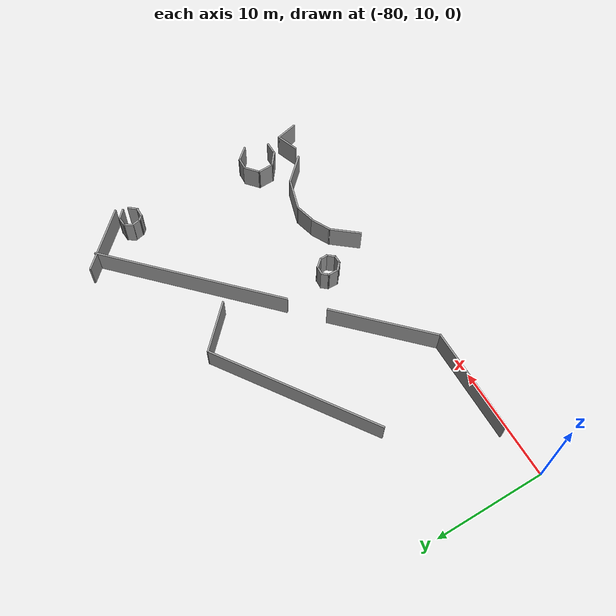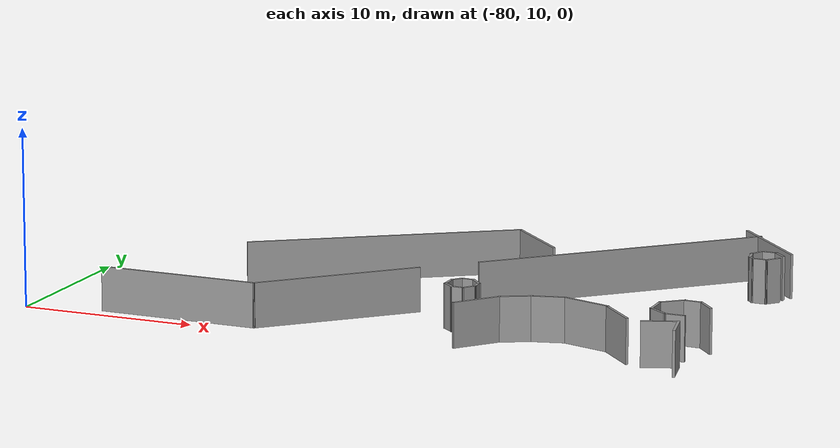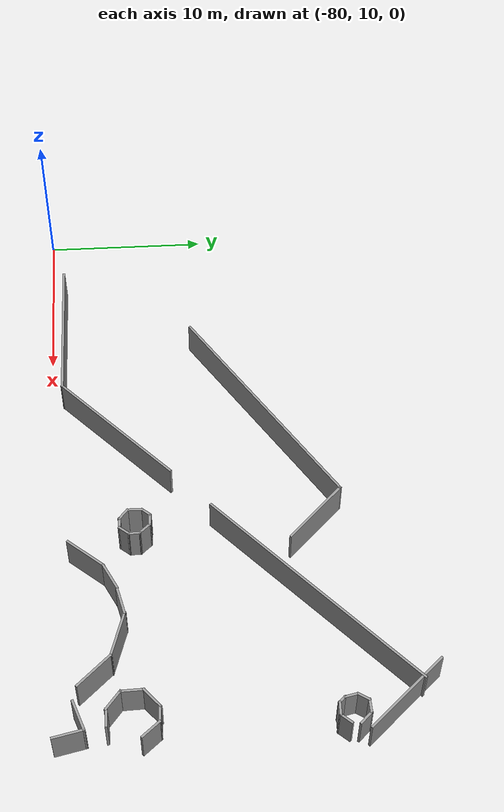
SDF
<sdf version="1.6">
 <model name="mall_new_reduce_size">
  <pose>-6.80917 7.5529 0 0 -0 0</pose>
  <link name="Wall_0">
   <collision name="Wall_0_Collision">
    <geometry><box><size>9.25048 0.15 2.5</size></box></geometry>
    <pose>0 0 1.25 0 -0 0</pose>
   </collision>
   <visual name="Wall_0_Visual">
    <pose>0 0 1.25 0 -0 0</pose>
    <geometry><box><size>9.25048 0.15 2.5</size></box></geometry>
    <material>
     <script><uri>file://media/materials/scripts/gazebo.material</uri><name>Gazebo/Grey</name></script>
     <ambient>1 1 1 1</ambient>
    </material>
    <meta><layer>0</layer></meta>
   </visual>
   <pose>-64.3372 3.2996 0 0 -0 -0.010225</pose>
  </link>
  <link name="Wall_10">
   <collision name="Wall_10_Collision">
    <geometry><box><size>15.64 0.15 2.5</size></box></geometry>
    <pose>0 0 1.25 0 -0 0</pose>
   </collision>
   <visual name="Wall_10_Visual">
    <pose>0 0 1.25 0 -0 0</pose>
    <geometry><box><size>15.64 0.15 2.5</size></box></geometry>
    <material>
     <script><uri>file://media/materials/scripts/gazebo.material</uri><name>Gazebo/Grey</name></script>
     <ambient>1 1 1 1</ambient>
    </material>
    <meta><layer>0</layer></meta>
   </visual>
   <pose>-57.6357 15.9234 0 0 -0 0.595213</pose>
  </link>
  <link name="Wall_106">
   <collision name="Wall_106_Collision">
    <geometry><box><size>0.88293 0.15 2.5</size></box></geometry>
    <pose>0 0 1.25 0 -0 0</pose>
   </collision>
   <visual name="Wall_106_Visual">
    <pose>0 0 1.25 0 -0 0</pose>
    <geometry><box><size>0.88293 0.15 2.5</size></box></geometry>
    <material>
     <script><uri>file://media/materials/scripts/gazebo.material</uri><name>Gazebo/Grey</name></script>
     <ambient>1 1 1 1</ambient>
    </material>
    <meta><layer>0</layer></meta>
   </visual>
   <pose>-37.2247 20.3731 0 0 -0 1.00343</pose>
  </link>
  <link name="Wall_107">
   <collision name="Wall_107_Collision">
    <geometry><box><size>0.940533 0.15 2.5</size></box></geometry>
    <pose>0 0 1.25 0 -0 0</pose>
   </collision>
   <visual name="Wall_107_Visual">
    <pose>0 0 1.25 0 -0 0</pose>
    <geometry><box><size>0.940533 0.15 2.5</size></box></geometry>
    <material>
     <script><uri>file://media/materials/scripts/gazebo.material</uri><name>Gazebo/Grey</name></script>
     <ambient>1 1 1 1</ambient>
    </material>
    <meta><layer>0</layer></meta>
   </visual>
   <pose>-36.633 20.7072 0 0 -0 0.04939</pose>
  </link>
  <link name="Wall_108">
   <collision name="Wall_108_Collision">
    <geometry><box><size>1.04338 0.15 2.5</size></box></geometry>
    <pose>0 0 1.25 0 -0 0</pose>
   </collision>
   <visual name="Wall_108_Visual">
    <pose>0 0 1.25 0 -0 0</pose>
    <geometry><box><size>1.04338 0.15 2.5</size></box></geometry>
    <material>
     <script><uri>file://media/materials/scripts/gazebo.material</uri><name>Gazebo/Grey</name></script>
     <ambient>1 1 1 1</ambient>
    </material>
    <meta><layer>0</layer></meta>
   </visual>
   <pose>-35.9265 20.4122 0 0 -0 -0.780985</pose>
  </link>
  <link name="Wall_11">
   <collision name="Wall_11_Collision">
    <geometry><box><size>4.74566 0.15 2.5</size></box></geometry>
    <pose>0 0 1.25 0 -0 0</pose>
   </collision>
   <visual name="Wall_11_Visual">
    <pose>0 0 1.25 0 -0 0</pose>
    <geometry><box><size>4.74566 0.15 2.5</size></box></geometry>
    <material>
     <script><uri>file://media/materials/scripts/gazebo.material</uri><name>Gazebo/Grey</name></script>
     <ambient>1 1 1 1</ambient>
    </material>
    <meta><layer>0</layer></meta>
   </visual>
   <pose>-49.5878 18.6511 0 0 -0 -0.779209</pose>
  </link>
  <link name="Wall_110">
   <collision name="Wall_110_Collision">
    <geometry><box><size>0.945582 0.15 2.5</size></box></geometry>
    <pose>0 0 1.25 0 -0 0</pose>
   </collision>
   <visual name="Wall_110_Visual">
    <pose>0 0 1.25 0 -0 0</pose>
    <geometry><box><size>0.945582 0.15 2.5</size></box></geometry>
    <material>
     <script><uri>file://media/materials/scripts/gazebo.material</uri><name>Gazebo/Grey</name></script>
     <ambient>1 1 1 1</ambient>
    </material>
    <meta><layer>0</layer></meta>
   </visual>
   <pose>-35.9305 19.2738 0 0 -0 -2.28278</pose>
  </link>
  <link name="Wall_111">
   <collision name="Wall_111_Collision">
    <geometry><box><size>0.906136 0.15 2.5</size></box></geometry>
    <pose>0 0 1.25 0 -0 0</pose>
   </collision>
   <visual name="Wall_111_Visual">
    <pose>0 0 1.25 0 -0 0</pose>
    <geometry><box><size>0.906136 0.15 2.5</size></box></geometry>
    <material>
     <script><uri>file://media/materials/scripts/gazebo.material</uri><name>Gazebo/Grey</name></script>
     <ambient>1 1 1 1</ambient>
    </material>
    <meta><layer>0</layer></meta>
   </visual>
   <pose>-36.5684 18.981 0 0 -0 3.13422</pose>
  </link>
  <link name="Wall_112">
   <collision name="Wall_112_Collision">
    <geometry><box><size>0.599997 0.15 2.5</size></box></geometry>
    <pose>0 0 1.25 0 -0 0</pose>
   </collision>
   <visual name="Wall_112_Visual">
    <pose>0 0 1.25 0 -0 0</pose>
    <geometry><box><size>0.599997 0.15 2.5</size></box></geometry>
    <material>
     <script><uri>file://media/materials/scripts/gazebo.material</uri><name>Gazebo/Grey</name></script>
     <ambient>1 1 1 1</ambient>
    </material>
    <meta><layer>0</layer></meta>
   </visual>
   <pose>-37.1032 19.1505 0 0 -0 2.30701</pose>
  </link>
  <link name="Wall_116">
   <collision name="Wall_116_Collision">
    <geometry><box><size>0.795039 0.15 2.5</size></box></geometry>
    <pose>0 0 1.25 0 -0 0</pose>
   </collision>
   <visual name="Wall_116_Visual">
    <pose>0 0 1.25 0 -0 0</pose>
    <geometry><box><size>0.795039 0.15 2.5</size></box></geometry>
    <material>
     <script><uri>file://media/materials/scripts/gazebo.material</uri><name>Gazebo/Grey</name></script>
     <ambient>1 1 1 1</ambient>
    </material>
    <meta><layer>0</layer></meta>
   </visual>
   <pose>-37.3234 19.6378 0 0 -0 1.78689</pose>
  </link>
  <link name="Wall_15">
   <collision name="Wall_15_Collision">
    <geometry><box><size>17.0313 0.15 2.5</size></box></geometry>
    <pose>0 0 1.25 0 -0 0</pose>
   </collision>
   <visual name="Wall_15_Visual">
    <pose>0 0 1.25 0 -0 0</pose>
    <geometry><box><size>17.0313 0.15 2.5</size></box></geometry>
    <material>
     <script><uri>file://media/materials/scripts/gazebo.material</uri><name>Gazebo/Grey</name></script>
     <ambient>1 1 1 1</ambient>
    </material>
    <meta><layer>0</layer></meta>
   </visual>
   <pose>-44.3443 18.1837 0 0 -0 0.766862</pose>
  </link>
  <link name="Wall_17">
   <collision name="Wall_17_Collision">
    <geometry><box><size>6.11812 0.15 2.5</size></box></geometry>
    <pose>0 0 1.25 0 -0 0</pose>
   </collision>
   <visual name="Wall_17_Visual">
    <pose>0 0 1.25 0 -0 0</pose>
    <geometry><box><size>6.11812 0.15 2.5</size></box></geometry>
    <material>
     <script><uri>file://media/materials/scripts/gazebo.material</uri><name>Gazebo/Grey</name></script>
     <ambient>1 1 1 1</ambient>
    </material>
    <meta><layer>0</layer></meta>
   </visual>
   <pose>-37.3721 22.8899 0 0 -0 -0.823537</pose>
  </link>
  <link name="Wall_2">
   <collision name="Wall_2_Collision">
    <geometry><box><size>9.63799 0.15 2.5</size></box></geometry>
    <pose>0 0 1.25 0 -0 0</pose>
   </collision>
   <visual name="Wall_2_Visual">
    <pose>0 0 1.25 0 -0 0</pose>
    <geometry><box><size>9.63799 0.15 2.5</size></box></geometry>
    <material>
     <script><uri>file://media/materials/scripts/gazebo.material</uri><name>Gazebo/Grey</name></script>
     <ambient>1 1 1 1</ambient>
    </material>
    <meta><layer>0</layer></meta>
   </visual>
   <pose>-56.4049 6.57954 0 0 -0 -2.36452</pose>
  </link>
  <link name="Wall_354">
   <collision name="Wall_354_Collision">
    <geometry><box><size>2.05857 0.15 2.5</size></box></geometry>
    <pose>0 0 1.25 0 -0 0</pose>
   </collision>
   <visual name="Wall_354_Visual">
    <pose>0 0 1.25 0 -0 0</pose>
    <geometry><box><size>2.05857 0.15 2.5</size></box></geometry>
    <material>
     <script><uri>file://media/materials/scripts/gazebo.material</uri><name>Gazebo/Grey</name></script>
     <ambient>1 1 1 1</ambient>
    </material>
    <meta><layer>0</layer></meta>
   </visual>
   <pose>-36.9144 4.20159 0 0 -0 0.346103</pose>
  </link>
  <link name="Wall_355">
   <collision name="Wall_355_Collision">
    <geometry><box><size>1.98834 0.15 2.5</size></box></geometry>
    <pose>0 0 1.25 0 -0 0</pose>
   </collision>
   <visual name="Wall_355_Visual">
    <pose>0 0 1.25 0 -0 0</pose>
    <geometry><box><size>1.98834 0.15 2.5</size></box></geometry>
    <material>
     <script><uri>file://media/materials/scripts/gazebo.material</uri><name>Gazebo/Grey</name></script>
     <ambient>1 1 1 1</ambient>
    </material>
    <meta><layer>0</layer></meta>
   </visual>
   <pose>-35.8124 3.62071 0 0 -0 -1.34665</pose>
  </link>
  <link name="Wall_370">
   <collision name="Wall_370_Collision">
    <geometry><box><size>2.80655 0.15 2.5</size></box></geometry>
    <pose>0 0 1.25 0 -0 0</pose>
   </collision>
   <visual name="Wall_370_Visual">
    <pose>0 0 1.25 0 -0 0</pose>
    <geometry><box><size>2.80655 0.15 2.5</size></box></geometry>
    <material>
     <script><uri>file://media/materials/scripts/gazebo.material</uri><name>Gazebo/Grey</name></script>
     <ambient>1 1 1 1</ambient>
    </material>
    <meta><layer>0</layer></meta>
   </visual>
   <pose>-39.6621 5.10061 0 0 -0 2.32612</pose>
  </link>
  <link name="Wall_372">
   <collision name="Wall_372_Collision">
    <geometry><box><size>3.01709 0.15 2.5</size></box></geometry>
    <pose>0 0 1.25 0 -0 0</pose>
   </collision>
   <visual name="Wall_372_Visual">
    <pose>0 0 1.25 0 -0 0</pose>
    <geometry><box><size>3.01709 0.15 2.5</size></box></geometry>
    <material>
     <script><uri>file://media/materials/scripts/gazebo.material</uri><name>Gazebo/Grey</name></script>
     <ambient>1 1 1 1</ambient>
    </material>
    <meta><layer>0</layer></meta>
   </visual>
   <pose>-41.9417 6.50761 0 0 -0 2.84045</pose>
  </link>
  <link name="Wall_373">
   <collision name="Wall_373_Collision">
    <geometry><box><size>1.91289 0.15 2.5</size></box></geometry>
    <pose>0 0 1.25 0 -0 0</pose>
   </collision>
   <visual name="Wall_373_Visual">
    <pose>0 0 1.25 0 -0 0</pose>
    <geometry><box><size>1.91289 0.15 2.5</size></box></geometry>
    <material>
     <script><uri>file://media/materials/scripts/gazebo.material</uri><name>Gazebo/Grey</name></script>
     <ambient>1 1 1 1</ambient>
    </material>
    <meta><layer>0</layer></meta>
   </visual>
   <pose>-44.1511 6.70423 0 0 -0 -2.89655</pose>
  </link>
  <link name="Wall_374">
   <collision name="Wall_374_Collision">
    <geometry><box><size>1.87613 0.15 2.5</size></box></geometry>
    <pose>0 0 1.25 0 -0 0</pose>
   </collision>
   <visual name="Wall_374_Visual">
    <pose>0 0 1.25 0 -0 0</pose>
    <geometry><box><size>1.87613 0.15 2.5</size></box></geometry>
    <material>
     <script><uri>file://media/materials/scripts/gazebo.material</uri><name>Gazebo/Grey</name></script>
     <ambient>1 1 1 1</ambient>
    </material>
    <meta><layer>0</layer></meta>
   </visual>
   <pose>-45.7738 6.11041 0 0 -0 -2.66657</pose>
  </link>
  <link name="Wall_375">
   <collision name="Wall_375_Collision">
    <geometry><box><size>2.86167 0.15 2.5</size></box></geometry>
    <pose>0 0 1.25 0 -0 0</pose>
   </collision>
   <visual name="Wall_375_Visual">
    <pose>0 0 1.25 0 -0 0</pose>
    <geometry><box><size>2.86167 0.15 2.5</size></box></geometry>
    <material>
     <script><uri>file://media/materials/scripts/gazebo.material</uri><name>Gazebo/Grey</name></script>
     <ambient>1 1 1 1</ambient>
    </material>
    <meta><layer>0</layer></meta>
   </visual>
   <pose>-47.4141 4.66594 0 0 -0 -2.25608</pose>
  </link>
  <link name="Wall_381">
   <collision name="Wall_381_Collision">
    <geometry><box><size>1.0607 0.15 2.5</size></box></geometry>
    <pose>0 0 1.25 0 -0 0</pose>
   </collision>
   <visual name="Wall_381_Visual">
    <pose>0 0 1.25 0 -0 0</pose>
    <geometry><box><size>1.0607 0.15 2.5</size></box></geometry>
    <material>
     <script><uri>file://media/materials/scripts/gazebo.material</uri><name>Gazebo/Grey</name></script>
     <ambient>1 1 1 1</ambient>
    </material>
    <meta><layer>0</layer></meta>
   </visual>
   <pose>-36.7557 8.79735 0 0 -0 -0.048953</pose>
  </link>
  <link name="Wall_382">
   <collision name="Wall_382_Collision">
    <geometry><box><size>1.48403 0.15 2.5</size></box></geometry>
    <pose>0 0 1.25 0 -0 0</pose>
   </collision>
   <visual name="Wall_382_Visual">
    <pose>0 0 1.25 0 -0 0</pose>
    <geometry><box><size>1.48403 0.15 2.5</size></box></geometry>
    <material>
     <script><uri>file://media/materials/scripts/gazebo.material</uri><name>Gazebo/Grey</name></script>
     <ambient>1 1 1 1</ambient>
    </material>
    <meta><layer>0</layer></meta>
   </visual>
   <pose>-35.8638 8.28201 0 0 -0 -0.857017</pose>
  </link>
  <link name="Wall_385">
   <collision name="Wall_385_Collision">
    <geometry><box><size>1.17938 0.15 2.5</size></box></geometry>
    <pose>0 0 1.25 0 -0 0</pose>
   </collision>
   <visual name="Wall_385_Visual">
    <pose>0 0 1.25 0 -0 0</pose>
    <geometry><box><size>1.17938 0.15 2.5</size></box></geometry>
    <material>
     <script><uri>file://media/materials/scripts/gazebo.material</uri><name>Gazebo/Grey</name></script>
     <ambient>1 1 1 1</ambient>
    </material>
    <meta><layer>0</layer></meta>
   </visual>
   <pose>-36.6967 5.7652 0 0 -0 3.14159</pose>
  </link>
  <link name="Wall_386">
   <collision name="Wall_386_Collision">
    <geometry><box><size>1.51794 0.15 2.5</size></box></geometry>
    <pose>0 0 1.25 0 -0 0</pose>
   </collision>
   <visual name="Wall_386_Visual">
    <pose>0 0 1.25 0 -0 0</pose>
    <geometry><box><size>1.51794 0.15 2.5</size></box></geometry>
    <material>
     <script><uri>file://media/materials/scripts/gazebo.material</uri><name>Gazebo/Grey</name></script>
     <ambient>1 1 1 1</ambient>
    </material>
    <meta><layer>0</layer></meta>
   </visual>
   <pose>-37.7496 6.17559 0 0 -0 2.47754</pose>
  </link>
  <link name="Wall_387">
   <collision name="Wall_387_Collision">
    <geometry><box><size>1.49648 0.15 2.5</size></box></geometry>
    <pose>0 0 1.25 0 -0 0</pose>
   </collision>
   <visual name="Wall_387_Visual">
    <pose>0 0 1.25 0 -0 0</pose>
    <geometry><box><size>1.49648 0.15 2.5</size></box></geometry>
    <material>
     <script><uri>file://media/materials/scripts/gazebo.material</uri><name>Gazebo/Grey</name></script>
     <ambient>1 1 1 1</ambient>
    </material>
    <meta><layer>0</layer></meta>
   </visual>
   <pose>-38.2994 7.2698 0 0 -0 1.60394</pose>
  </link>
  <link name="Wall_388">
   <collision name="Wall_388_Collision">
    <geometry><box><size>1.55734 0.15 2.5</size></box></geometry>
    <pose>0 0 1.25 0 -0 0</pose>
   </collision>
   <visual name="Wall_388_Visual">
    <pose>0 0 1.25 0 -0 0</pose>
    <geometry><box><size>1.55734 0.15 2.5</size></box></geometry>
    <material>
     <script><uri>file://media/materials/scripts/gazebo.material</uri><name>Gazebo/Grey</name></script>
     <ambient>1 1 1 1</ambient>
    </material>
    <meta><layer>0</layer></meta>
   </visual>
   <pose>-37.7894 8.39163 0 0 -0 0.713085</pose>
  </link>
  <link name="Wall_391">
   <collision name="Wall_391_Collision">
    <geometry><box><size>0.801054 0.15 2.5</size></box></geometry>
    <pose>0 0 1.25 0 -0 0</pose>
   </collision>
   <visual name="Wall_391_Visual">
    <pose>0 0 1.25 0 -0 0</pose>
    <geometry><box><size>0.801054 0.15 2.5</size></box></geometry>
    <material>
     <script><uri>file://media/materials/scripts/gazebo.material</uri><name>Gazebo/Grey</name></script>
     <ambient>1 1 1 1</ambient>
    </material>
    <meta><layer>0</layer></meta>
   </visual>
   <pose>-49.5259 8.56782 0 0 -0 -0.059644</pose>
  </link>
  <link name="Wall_392">
   <collision name="Wall_392_Collision">
    <geometry><box><size>0.977816 0.15 2.5</size></box></geometry>
    <pose>0 0 1.25 0 -0 0</pose>
   </collision>
   <visual name="Wall_392_Visual">
    <pose>0 0 1.25 0 -0 0</pose>
    <geometry><box><size>0.977816 0.15 2.5</size></box></geometry>
    <material>
     <script><uri>file://media/materials/scripts/gazebo.material</uri><name>Gazebo/Grey</name></script>
     <ambient>1 1 1 1</ambient>
    </material>
    <meta><layer>0</layer></meta>
   </visual>
   <pose>-48.9309 8.24512 0 0 -0 -0.842257</pose>
  </link>
  <link name="Wall_393">
   <collision name="Wall_393_Collision">
    <geometry><box><size>0.800275 0.15 2.5</size></box></geometry>
    <pose>0 0 1.25 0 -0 0</pose>
   </collision>
   <visual name="Wall_393_Visual">
    <pose>0 0 1.25 0 -0 0</pose>
    <geometry><box><size>0.800275 0.15 2.5</size></box></geometry>
    <material>
     <script><uri>file://media/materials/scripts/gazebo.material</uri><name>Gazebo/Grey</name></script>
     <ambient>1 1 1 1</ambient>
    </material>
    <meta><layer>0</layer></meta>
   </visual>
   <pose>-48.6442 7.60579 0 0 -0 -1.53669</pose>
  </link>
  <link name="Wall_394">
   <collision name="Wall_394_Collision">
    <geometry><box><size>0.859742 0.15 2.5</size></box></geometry>
    <pose>0 0 1.25 0 -0 0</pose>
   </collision>
   <visual name="Wall_394_Visual">
    <pose>0 0 1.25 0 -0 0</pose>
    <geometry><box><size>0.859742 0.15 2.5</size></box></geometry>
    <material>
     <script><uri>file://media/materials/scripts/gazebo.material</uri><name>Gazebo/Grey</name></script>
     <ambient>1 1 1 1</ambient>
    </material>
    <meta><layer>0</layer></meta>
   </visual>
   <pose>-48.8588 7.00804 0 0 -0 -2.23994</pose>
  </link>
  <link name="Wall_395">
   <collision name="Wall_395_Collision">
    <geometry><box><size>0.794353 0.15 2.5</size></box></geometry>
    <pose>0 0 1.25 0 -0 0</pose>
   </collision>
   <visual name="Wall_395_Visual">
    <pose>0 0 1.25 0 -0 0</pose>
    <geometry><box><size>0.794353 0.15 2.5</size></box></geometry>
    <material>
     <script><uri>file://media/materials/scripts/gazebo.material</uri><name>Gazebo/Grey</name></script>
     <ambient>1 1 1 1</ambient>
    </material>
    <meta><layer>0</layer></meta>
   </visual>
   <pose>-49.3956 6.7297 0 0 -0 3.14159</pose>
  </link>
  <link name="Wall_396">
   <collision name="Wall_396_Collision">
    <geometry><box><size>0.916096 0.15 2.5</size></box></geometry>
    <pose>0 0 1.25 0 -0 0</pose>
   </collision>
   <visual name="Wall_396_Visual">
    <pose>0 0 1.25 0 -0 0</pose>
    <geometry><box><size>0.916096 0.15 2.5</size></box></geometry>
    <material>
     <script><uri>file://media/materials/scripts/gazebo.material</uri><name>Gazebo/Grey</name></script>
     <ambient>1 1 1 1</ambient>
    </material>
    <meta><layer>0</layer></meta>
   </visual>
   <pose>-50.0103 6.98341 0 0 -0 2.41764</pose>
  </link>
  <link name="Wall_397">
   <collision name="Wall_397_Collision">
    <geometry><box><size>1.03328 0.15 2.5</size></box></geometry>
    <pose>0 0 1.25 0 -0 0</pose>
   </collision>
   <visual name="Wall_397_Visual">
    <pose>0 0 1.25 0 -0 0</pose>
    <geometry><box><size>1.03328 0.15 2.5</size></box></geometry>
    <material>
     <script><uri>file://media/materials/scripts/gazebo.material</uri><name>Gazebo/Grey</name></script>
     <ambient>1 1 1 1</ambient>
    </material>
    <meta><layer>0</layer></meta>
   </visual>
   <pose>-50.3056 7.67321 0 0 -0 1.56452</pose>
  </link>
  <link name="Wall_398">
   <collision name="Wall_398_Collision">
    <geometry><box><size>0.752241 0.15 2.5</size></box></geometry>
    <pose>0 0 1.25 0 -0 0</pose>
   </collision>
   <visual name="Wall_398_Visual">
    <pose>0 0 1.25 0 -0 0</pose>
    <geometry><box><size>0.752241 0.15 2.5</size></box></geometry>
    <material>
     <script><uri>file://media/materials/scripts/gazebo.material</uri><name>Gazebo/Grey</name></script>
     <ambient>1 1 1 1</ambient>
    </material>
    <meta><layer>0</layer></meta>
   </visual>
   <pose>-50.1044 8.34606 0 0 -0 0.875499</pose>
  </link>
  <static>1</static>
 </model>
</sdf>
